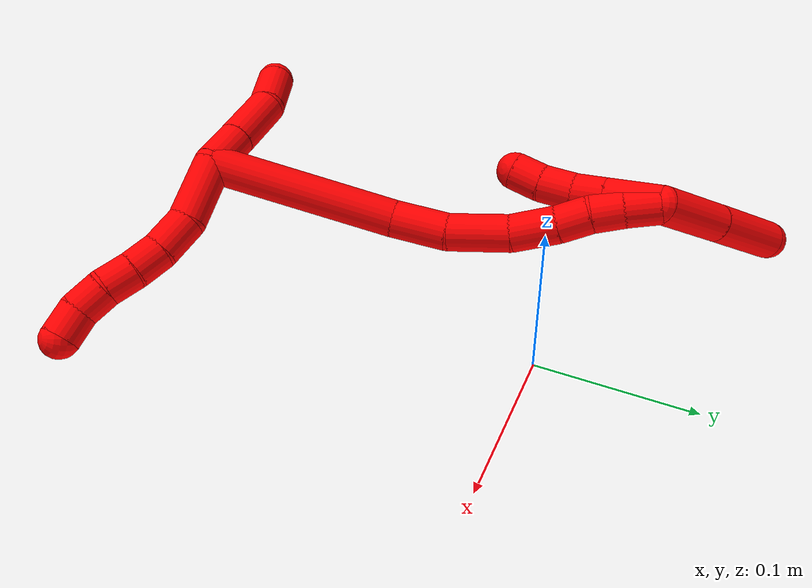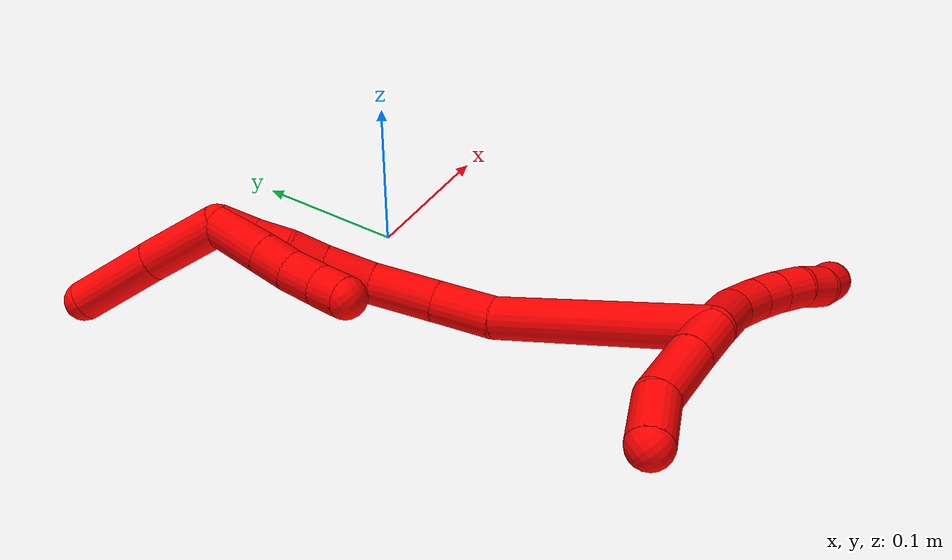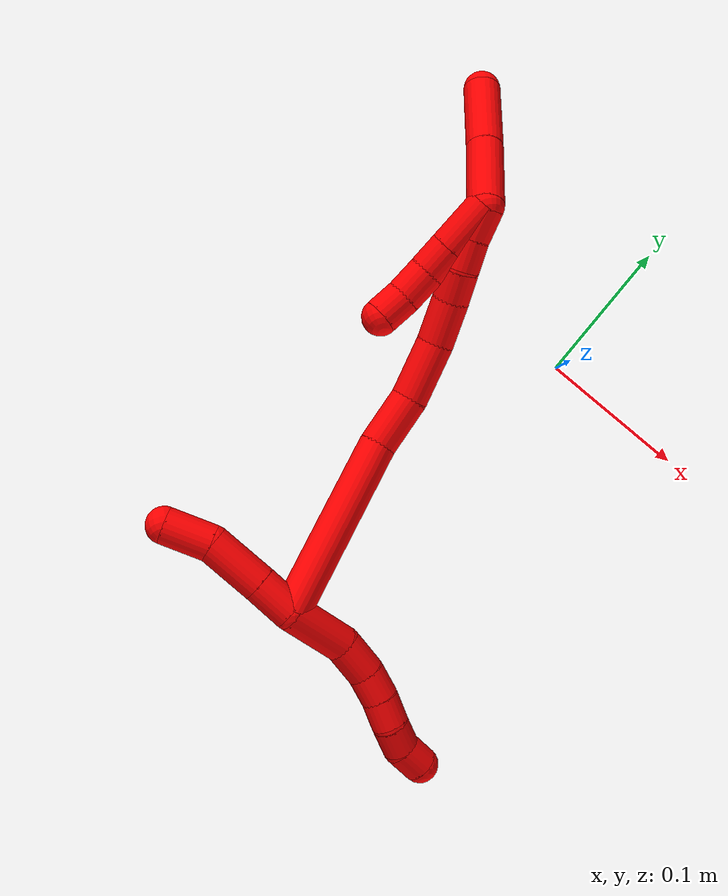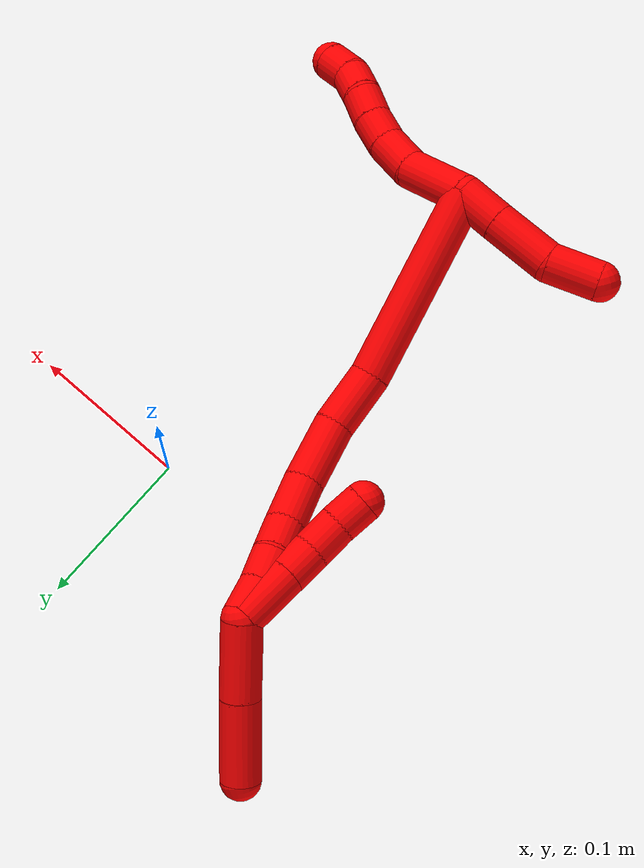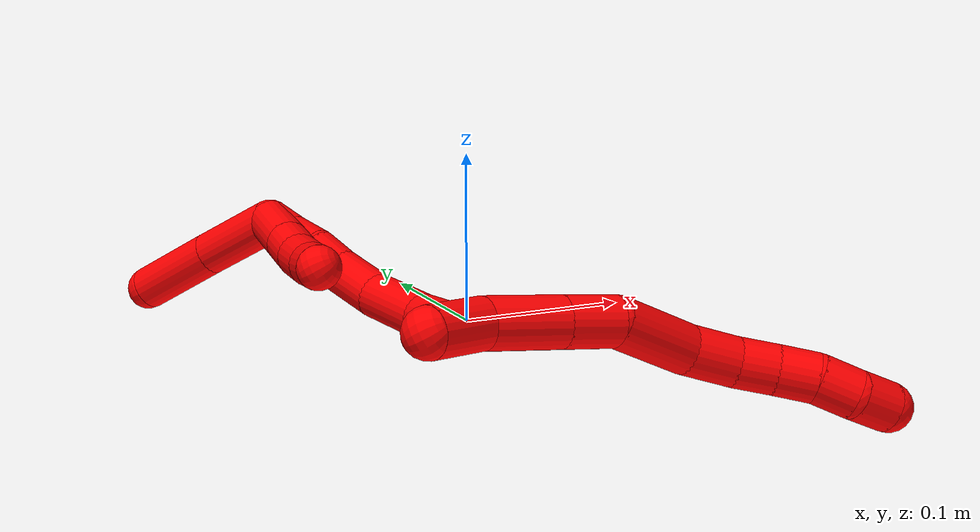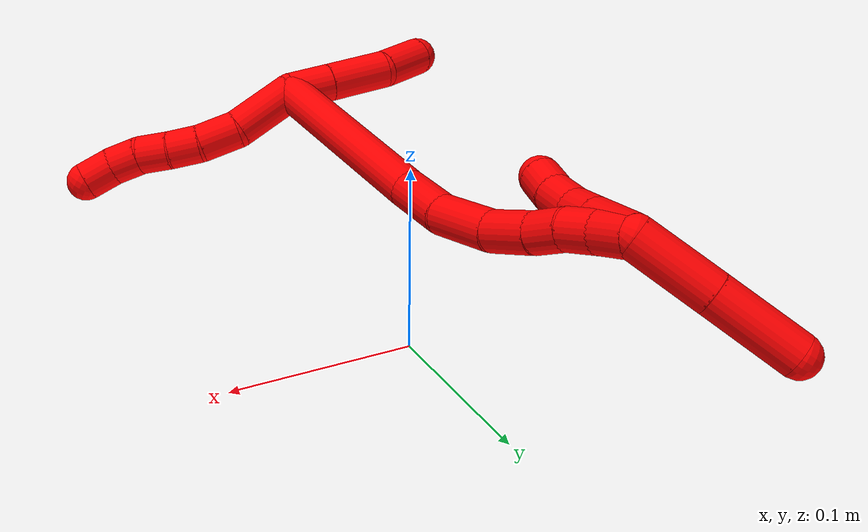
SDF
<sdf version="1.7">
 <world name="default">
  <model name="2">
   <static>0</static>
   <link name="2">
    <collision name="collision-cylinder-e_1_2_8">
     <pose>0.015666 0.012285 0.008926 -0.942449 0.801002 -0.424923</pose>
     <geometry><cylinder><radius>0.0125</radius><length>0.043635</length></cylinder></geometry>
     <surface>
      <friction><ode><mu>1.16</mu><mu2>1.16</mu2><slip1>0</slip1><slip2>0</slip2></ode></friction>
      <contact><ode><kp>1e+06</kp><kd>1</kd><max_vel>0</max_vel><min_depth>0.001</min_depth></ode></contact>
     </surface>
    </collision>
    <visual name="visual-cylinder-e_1_2_8">
     <pose>0.015666 0.012285 0.008926 -0.942449 0.801002 -0.424923</pose>
     <geometry><cylinder><radius>0.0125</radius><length>0.043635</length></cylinder></geometry>
     <material><ambient>1 0 0 1</ambient></material>
    </visual>
    <collision name="collision-cylinder-e_2_8_9">
     <pose>0.040262 0.029159 0.025952 -0.515534 0.764545 -0.211198</pose>
     <geometry><cylinder><radius>0.0125</radius><length>0.025801</length></cylinder></geometry>
     <surface>
      <friction><ode><mu>1.16</mu><mu2>1.16</mu2><slip1>0</slip1><slip2>0</slip2></ode></friction>
      <contact><ode><kp>1e+06</kp><kd>1</kd><max_vel>0</max_vel><min_depth>0.001</min_depth></ode></contact>
     </surface>
    </collision>
    <visual name="visual-cylinder-e_2_8_9">
     <pose>0.040262 0.029159 0.025952 -0.515534 0.764545 -0.211198</pose>
     <geometry><cylinder><radius>0.0125</radius><length>0.025801</length></cylinder></geometry>
     <material><ambient>1 0 0 1</ambient></material>
    </visual>
    <collision name="collision-cylinder-e_3_9_10">
     <pose>0.055711 0.035856 0.041525 -0.274807 0.698411 -0.100615</pose>
     <geometry><cylinder><radius>0.0125</radius><length>0.020278</length></cylinder></geometry>
     <surface>
      <friction><ode><mu>1.16</mu><mu2>1.16</mu2><slip1>0</slip1><slip2>0</slip2></ode></friction>
      <contact><ode><kp>1e+06</kp><kd>1</kd><max_vel>0</max_vel><min_depth>0.001</min_depth></ode></contact>
     </surface>
    </collision>
    <visual name="visual-cylinder-e_3_9_10">
     <pose>0.055711 0.035856 0.041525 -0.274807 0.698411 -0.100615</pose>
     <geometry><cylinder><radius>0.0125</radius><length>0.020278</length></cylinder></geometry>
     <material><ambient>1 0 0 1</ambient></material>
    </visual>
    <collision name="collision-cylinder-e_4_10_11">
     <pose>0.06865 0.038907 0.056621 -0.123187 0.696205 -0.044751</pose>
     <geometry><cylinder><radius>0.0125</radius><length>0.02002</length></cylinder></geometry>
     <surface>
      <friction><ode><mu>1.16</mu><mu2>1.16</mu2><slip1>0</slip1><slip2>0</slip2></ode></friction>
      <contact><ode><kp>1e+06</kp><kd>1</kd><max_vel>0</max_vel><min_depth>0.001</min_depth></ode></contact>
     </surface>
    </collision>
    <visual name="visual-cylinder-e_4_10_11">
     <pose>0.06865 0.038907 0.056621 -0.123187 0.696205 -0.044751</pose>
     <geometry><cylinder><radius>0.0125</radius><length>0.02002</length></cylinder></geometry>
     <material><ambient>1 0 0 1</ambient></material>
    </visual>
    <collision name="collision-cylinder-e_5_11_12">
     <pose>0.082927 0.04097 0.070369 -0.180724 0.900683 -0.087558</pose>
     <geometry><cylinder><radius>0.0125</radius><length>0.020051</length></cylinder></geometry>
     <surface>
      <friction><ode><mu>1.16</mu><mu2>1.16</mu2><slip1>0</slip1><slip2>0</slip2></ode></friction>
      <contact><ode><kp>1e+06</kp><kd>1</kd><max_vel>0</max_vel><min_depth>0.001</min_depth></ode></contact>
     </surface>
    </collision>
    <visual name="visual-cylinder-e_5_11_12">
     <pose>0.082927 0.04097 0.070369 -0.180724 0.900683 -0.087558</pose>
     <geometry><cylinder><radius>0.0125</radius><length>0.020051</length></cylinder></geometry>
     <material><ambient>1 0 0 1</ambient></material>
    </visual>
    <collision name="collision-cylinder-e_6_12_6">
     <pose>0.098298 0.046527 0.081594 -0.71612 0.838024 -0.330284</pose>
     <geometry><cylinder><radius>0.0125</radius><length>0.020215</length></cylinder></geometry>
     <surface>
      <friction><ode><mu>1.16</mu><mu2>1.16</mu2><slip1>0</slip1><slip2>0</slip2></ode></friction>
      <contact><ode><kp>1e+06</kp><kd>1</kd><max_vel>0</max_vel><min_depth>0.001</min_depth></ode></contact>
     </surface>
    </collision>
    <visual name="visual-cylinder-e_6_12_6">
     <pose>0.098298 0.046527 0.081594 -0.71612 0.838024 -0.330284</pose>
     <geometry><cylinder><radius>0.0125</radius><length>0.020215</length></cylinder></geometry>
     <material><ambient>1 0 0 1</ambient></material>
    </visual>
    <collision name="collision-cylinder-e_1_2_13">
     <pose>-0.006763 -0.007277 -0.009517 2.48879 -0.513961 -1.32027</pose>
     <geometry><cylinder><radius>0.0125</radius><length>0.027515</length></cylinder></geometry>
     <surface>
      <friction><ode><mu>1.16</mu><mu2>1.16</mu2><slip1>0</slip1><slip2>0</slip2></ode></friction>
      <contact><ode><kp>1e+06</kp><kd>1</kd><max_vel>0</max_vel><min_depth>0.001</min_depth></ode></contact>
     </surface>
    </collision>
    <visual name="visual-cylinder-e_1_2_13">
     <pose>-0.006763 -0.007277 -0.009517 2.48879 -0.513961 -1.32027</pose>
     <geometry><cylinder><radius>0.0125</radius><length>0.027515</length></cylinder></geometry>
     <material><ambient>1 0 0 1</ambient></material>
    </visual>
    <collision name="collision-cylinder-e_2_13_14">
     <pose>-0.023134 -0.025511 -0.032675 2.46489 -0.502114 -1.25964</pose>
     <geometry><cylinder><radius>0.0125</radius><length>0.039922</length></cylinder></geometry>
     <surface>
      <friction><ode><mu>1.16</mu><mu2>1.16</mu2><slip1>0</slip1><slip2>0</slip2></ode></friction>
      <contact><ode><kp>1e+06</kp><kd>1</kd><max_vel>0</max_vel><min_depth>0.001</min_depth></ode></contact>
     </surface>
    </collision>
    <visual name="visual-cylinder-e_2_13_14">
     <pose>-0.023134 -0.025511 -0.032675 2.46489 -0.502114 -1.25964</pose>
     <geometry><cylinder><radius>0.0125</radius><length>0.039922</length></cylinder></geometry>
     <material><ambient>1 0 0 1</ambient></material>
    </visual>
    <collision name="collision-cylinder-e_3_14_5">
     <pose>-0.03821 -0.049471 -0.054446 2.12959 -0.342565 -0.605159</pose>
     <geometry><cylinder><radius>0.0125</radius><length>0.032564</length></cylinder></geometry>
     <surface>
      <friction><ode><mu>1.16</mu><mu2>1.16</mu2><slip1>0</slip1><slip2>0</slip2></ode></friction>
      <contact><ode><kp>1e+06</kp><kd>1</kd><max_vel>0</max_vel><min_depth>0.001</min_depth></ode></contact>
     </surface>
    </collision>
    <visual name="visual-cylinder-e_3_14_5">
     <pose>-0.03821 -0.049471 -0.054446 2.12959 -0.342565 -0.605159</pose>
     <geometry><cylinder><radius>0.0125</radius><length>0.032564</length></cylinder></geometry>
     <material><ambient>1 0 0 1</ambient></material>
    </visual>
    <collision name="collision-cylinder-e_1_2_15">
     <pose>-0.00899 0.040751 -0.045933 -2.41591 -0.145378 0.379</pose>
     <geometry><cylinder><radius>0.0125</radius><length>0.124118</length></cylinder></geometry>
     <surface>
      <friction><ode><mu>1.16</mu><mu2>1.16</mu2><slip1>0</slip1><slip2>0</slip2></ode></friction>
      <contact><ode><kp>1e+06</kp><kd>1</kd><max_vel>0</max_vel><min_depth>0.001</min_depth></ode></contact>
     </surface>
    </collision>
    <visual name="visual-cylinder-e_1_2_15">
     <pose>-0.00899 0.040751 -0.045933 -2.41591 -0.145378 0.379</pose>
     <geometry><cylinder><radius>0.0125</radius><length>0.124118</length></cylinder></geometry>
     <material><ambient>1 0 0 1</ambient></material>
    </visual>
    <collision name="collision-cylinder-e_2_15_16">
     <pose>-0.022843 0.095797 -0.103006 -2.23272 -0.262133 0.527104</pose>
     <geometry><cylinder><radius>0.0125</radius><length>0.037528</length></cylinder></geometry>
     <surface>
      <friction><ode><mu>1.16</mu><mu2>1.16</mu2><slip1>0</slip1><slip2>0</slip2></ode></friction>
      <contact><ode><kp>1e+06</kp><kd>1</kd><max_vel>0</max_vel><min_depth>0.001</min_depth></ode></contact>
     </surface>
    </collision>
    <visual name="visual-cylinder-e_2_15_16">
     <pose>-0.022843 0.095797 -0.103006 -2.23272 -0.262133 0.527104</pose>
     <geometry><cylinder><radius>0.0125</radius><length>0.037528</length></cylinder></geometry>
     <material><ambient>1 0 0 1</ambient></material>
    </visual>
    <collision name="collision-cylinder-e_3_16_17">
     <pose>-0.036932 0.12337 -0.126765 -2.33086 -0.466569 1.01135</pose>
     <geometry><cylinder><radius>0.0125</radius><length>0.041022</length></cylinder></geometry>
     <surface>
      <friction><ode><mu>1.16</mu><mu2>1.16</mu2><slip1>0</slip1><slip2>0</slip2></ode></friction>
      <contact><ode><kp>1e+06</kp><kd>1</kd><max_vel>0</max_vel><min_depth>0.001</min_depth></ode></contact>
     </surface>
    </collision>
    <visual name="visual-cylinder-e_3_16_17">
     <pose>-0.036932 0.12337 -0.126765 -2.33086 -0.466569 1.01135</pose>
     <geometry><cylinder><radius>0.0125</radius><length>0.041022</length></cylinder></geometry>
     <material><ambient>1 0 0 1</ambient></material>
    </visual>
    <collision name="collision-cylinder-e_4_17_18">
     <pose>-0.055902 0.1453 -0.147853 -2.34531 -0.677713 1.39493</pose>
     <geometry><cylinder><radius>0.0125</radius><length>0.031079</length></cylinder></geometry>
     <surface>
      <friction><ode><mu>1.16</mu><mu2>1.16</mu2><slip1>0</slip1><slip2>0</slip2></ode></friction>
      <contact><ode><kp>1e+06</kp><kd>1</kd><max_vel>0</max_vel><min_depth>0.001</min_depth></ode></contact>
     </surface>
    </collision>
    <visual name="visual-cylinder-e_4_17_18">
     <pose>-0.055902 0.1453 -0.147853 -2.34531 -0.677713 1.39493</pose>
     <geometry><cylinder><radius>0.0125</radius><length>0.031079</length></cylinder></geometry>
     <material><ambient>1 0 0 1</ambient></material>
    </visual>
    <collision name="collision-cylinder-e_5_18_19">
     <pose>-0.073462 0.159443 -0.161494 -2.32658 -0.803085 1.55431</pose>
     <geometry><cylinder><radius>0.0125</radius><length>0.021729</length></cylinder></geometry>
     <surface>
      <friction><ode><mu>1.16</mu><mu2>1.16</mu2><slip1>0</slip1><slip2>0</slip2></ode></friction>
      <contact><ode><kp>1e+06</kp><kd>1</kd><max_vel>0</max_vel><min_depth>0.001</min_depth></ode></contact>
     </surface>
    </collision>
    <visual name="visual-cylinder-e_5_18_19">
     <pose>-0.073462 0.159443 -0.161494 -2.32658 -0.803085 1.55431</pose>
     <geometry><cylinder><radius>0.0125</radius><length>0.021729</length></cylinder></geometry>
     <material><ambient>1 0 0 1</ambient></material>
    </visual>
    <collision name="collision-cylinder-e_6_19_20">
     <pose>-0.087635 0.170754 -0.172974 -2.39617 -0.637503 1.40203</pose>
     <geometry><cylinder><radius>0.0125</radius><length>0.021357</length></cylinder></geometry>
     <surface>
      <friction><ode><mu>1.16</mu><mu2>1.16</mu2><slip1>0</slip1><slip2>0</slip2></ode></friction>
      <contact><ode><kp>1e+06</kp><kd>1</kd><max_vel>0</max_vel><min_depth>0.001</min_depth></ode></contact>
     </surface>
    </collision>
    <visual name="visual-cylinder-e_6_19_20">
     <pose>-0.087635 0.170754 -0.172974 -2.39617 -0.637503 1.40203</pose>
     <geometry><cylinder><radius>0.0125</radius><length>0.021357</length></cylinder></geometry>
     <material><ambient>1 0 0 1</ambient></material>
    </visual>
    <collision name="collision-cylinder-e_7_20_1">
     <pose>-0.100587 0.183854 -0.185418 -2.27141 -0.605884 1.18402</pose>
     <geometry><cylinder><radius>0.0125</radius><length>0.023167</length></cylinder></geometry>
     <surface>
      <friction><ode><mu>1.16</mu><mu2>1.16</mu2><slip1>0</slip1><slip2>0</slip2></ode></friction>
      <contact><ode><kp>1e+06</kp><kd>1</kd><max_vel>0</max_vel><min_depth>0.001</min_depth></ode></contact>
     </surface>
    </collision>
    <visual name="visual-cylinder-e_7_20_1">
     <pose>-0.100587 0.183854 -0.185418 -2.27141 -0.605884 1.18402</pose>
     <geometry><cylinder><radius>0.0125</radius><length>0.023167</length></cylinder></geometry>
     <material><ambient>1 0 0 1</ambient></material>
    </visual>
    <collision name="collision-cylinder-e_1_1_21">
     <pose>-0.100106 0.175896 -0.184572 1.14095 0.399554 0.258387</pose>
     <geometry><cylinder><radius>0.0125</radius><length>0.036389</length></cylinder></geometry>
     <surface>
      <friction><ode><mu>1.16</mu><mu2>1.16</mu2><slip1>0</slip1><slip2>0</slip2></ode></friction>
      <contact><ode><kp>1e+06</kp><kd>1</kd><max_vel>0</max_vel><min_depth>0.001</min_depth></ode></contact>
     </surface>
    </collision>
    <visual name="visual-cylinder-e_1_1_21">
     <pose>-0.100106 0.175896 -0.184572 1.14095 0.399554 0.258387</pose>
     <geometry><cylinder><radius>0.0125</radius><length>0.036389</length></cylinder></geometry>
     <material><ambient>1 0 0 1</ambient></material>
    </visual>
    <collision name="collision-cylinder-e_2_21_22">
     <pose>-0.08898 0.151848 -0.173521 1.13854 0.395265 0.254901</pose>
     <geometry><cylinder><radius>0.0125</radius><length>0.02103</length></cylinder></geometry>
     <surface>
      <friction><ode><mu>1.16</mu><mu2>1.16</mu2><slip1>0</slip1><slip2>0</slip2></ode></friction>
      <contact><ode><kp>1e+06</kp><kd>1</kd><max_vel>0</max_vel><min_depth>0.001</min_depth></ode></contact>
     </surface>
    </collision>
    <visual name="visual-cylinder-e_2_21_22">
     <pose>-0.08898 0.151848 -0.173521 1.13854 0.395265 0.254901</pose>
     <geometry><cylinder><radius>0.0125</radius><length>0.02103</length></cylinder></geometry>
     <material><ambient>1 0 0 1</ambient></material>
    </visual>
    <collision name="collision-cylinder-e_3_22_23">
     <pose>-0.081947 0.13348 -0.164337 1.07904 0.268601 0.161454</pose>
     <geometry><cylinder><radius>0.0125</radius><length>0.022488</length></cylinder></geometry>
     <surface>
      <friction><ode><mu>1.16</mu><mu2>1.16</mu2><slip1>0</slip1><slip2>0</slip2></ode></friction>
      <contact><ode><kp>1e+06</kp><kd>1</kd><max_vel>0</max_vel><min_depth>0.001</min_depth></ode></contact>
     </surface>
    </collision>
    <visual name="visual-cylinder-e_3_22_23">
     <pose>-0.081947 0.13348 -0.164337 1.07904 0.268601 0.161454</pose>
     <geometry><cylinder><radius>0.0125</radius><length>0.022488</length></cylinder></geometry>
     <material><ambient>1 0 0 1</ambient></material>
    </visual>
    <collision name="collision-cylinder-e_4_23_4">
     <pose>-0.077934 0.115004 -0.154712 1.10301 0.102616 0.063162</pose>
     <geometry><cylinder><radius>0.0125</radius><length>0.020093</length></cylinder></geometry>
     <surface>
      <friction><ode><mu>1.16</mu><mu2>1.16</mu2><slip1>0</slip1><slip2>0</slip2></ode></friction>
      <contact><ode><kp>1e+06</kp><kd>1</kd><max_vel>0</max_vel><min_depth>0.001</min_depth></ode></contact>
     </surface>
    </collision>
    <visual name="visual-cylinder-e_4_23_4">
     <pose>-0.077934 0.115004 -0.154712 1.10301 0.102616 0.063162</pose>
     <geometry><cylinder><radius>0.0125</radius><length>0.020093</length></cylinder></geometry>
     <material><ambient>1 0 0 1</ambient></material>
    </visual>
    <collision name="collision-cylinder-e_1_1_24">
     <pose>-0.10679 0.197016 -0.215016 -2.89586 0.016299 -0.131802</pose>
     <geometry><cylinder><radius>0.0125</radius><length>0.048378</length></cylinder></geometry>
     <surface>
      <friction><ode><mu>1.16</mu><mu2>1.16</mu2><slip1>0</slip1><slip2>0</slip2></ode></friction>
      <contact><ode><kp>1e+06</kp><kd>1</kd><max_vel>0</max_vel><min_depth>0.001</min_depth></ode></contact>
     </surface>
    </collision>
    <visual name="visual-cylinder-e_1_1_24">
     <pose>-0.10679 0.197016 -0.215016 -2.89586 0.016299 -0.131802</pose>
     <geometry><cylinder><radius>0.0125</radius><length>0.048378</length></cylinder></geometry>
     <material><ambient>1 0 0 1</ambient></material>
    </visual>
    <collision name="collision-cylinder-e_2_24_3">
     <pose>-0.10567 0.208553 -0.263649 -2.92071 0.028123 -0.252273</pose>
     <geometry><cylinder><radius>0.0125</radius><length>0.051622</length></cylinder></geometry>
     <surface>
      <friction><ode><mu>1.16</mu><mu2>1.16</mu2><slip1>0</slip1><slip2>0</slip2></ode></friction>
      <contact><ode><kp>1e+06</kp><kd>1</kd><max_vel>0</max_vel><min_depth>0.001</min_depth></ode></contact>
     </surface>
    </collision>
    <visual name="visual-cylinder-e_2_24_3">
     <pose>-0.10567 0.208553 -0.263649 -2.92071 0.028123 -0.252273</pose>
     <geometry><cylinder><radius>0.0125</radius><length>0.051622</length></cylinder></geometry>
     <material><ambient>1 0 0 1</ambient></material>
    </visual>
    <collision name="collision-sphere-3">
     <pose>-0.104944 0.214205 -0.288823 0 -0 0</pose>
     <geometry><sphere><radius>0.0125</radius></sphere></geometry>
     <surface>
      <friction><ode><mu>1.16</mu><mu2>1.16</mu2><slip1>0</slip1><slip2>0</slip2></ode></friction>
      <contact><ode><kp>1e+06</kp><kd>1</kd><max_vel>0</max_vel><min_depth>0.001</min_depth></ode></contact>
     </surface>
    </collision>
    <visual name="visual-sphere-3">
     <pose>-0.104944 0.214205 -0.288823 0 -0 0</pose>
     <geometry><sphere><radius>0.0125</radius></sphere></geometry>
     <material><ambient>1 0 0 1</ambient></material>
    </visual>
    <collision name="collision-sphere-24">
     <pose>-0.106396 0.2029 -0.238475 0 -0 0</pose>
     <geometry><sphere><radius>0.0125</radius></sphere></geometry>
     <surface>
      <friction><ode><mu>1.16</mu><mu2>1.16</mu2><slip1>0</slip1><slip2>0</slip2></ode></friction>
      <contact><ode><kp>1e+06</kp><kd>1</kd><max_vel>0</max_vel><min_depth>0.001</min_depth></ode></contact>
     </surface>
    </collision>
    <visual name="visual-sphere-24">
     <pose>-0.106396 0.2029 -0.238475 0 -0 0</pose>
     <geometry><sphere><radius>0.0125</radius></sphere></geometry>
     <material><ambient>1 0 0 1</ambient></material>
    </visual>
    <collision name="collision-sphere-4">
     <pose>-0.076905 0.106084 -0.150206 0 -0 0</pose>
     <geometry><sphere><radius>0.0125</radius></sphere></geometry>
     <surface>
      <friction><ode><mu>1.16</mu><mu2>1.16</mu2><slip1>0</slip1><slip2>0</slip2></ode></friction>
      <contact><ode><kp>1e+06</kp><kd>1</kd><max_vel>0</max_vel><min_depth>0.001</min_depth></ode></contact>
     </surface>
    </collision>
    <visual name="visual-sphere-4">
     <pose>-0.076905 0.106084 -0.150206 0 -0 0</pose>
     <geometry><sphere><radius>0.0125</radius></sphere></geometry>
     <material><ambient>1 0 0 1</ambient></material>
    </visual>
    <collision name="collision-sphere-23">
     <pose>-0.078963 0.123924 -0.159218 0 -0 0</pose>
     <geometry><sphere><radius>0.0125</radius></sphere></geometry>
     <surface>
      <friction><ode><mu>1.16</mu><mu2>1.16</mu2><slip1>0</slip1><slip2>0</slip2></ode></friction>
      <contact><ode><kp>1e+06</kp><kd>1</kd><max_vel>0</max_vel><min_depth>0.001</min_depth></ode></contact>
     </surface>
    </collision>
    <visual name="visual-sphere-23">
     <pose>-0.078963 0.123924 -0.159218 0 -0 0</pose>
     <geometry><sphere><radius>0.0125</radius></sphere></geometry>
     <material><ambient>1 0 0 1</ambient></material>
    </visual>
    <collision name="collision-sphere-22">
     <pose>-0.084931 0.143036 -0.169456 0 -0 0</pose>
     <geometry><sphere><radius>0.0125</radius></sphere></geometry>
     <surface>
      <friction><ode><mu>1.16</mu><mu2>1.16</mu2><slip1>0</slip1><slip2>0</slip2></ode></friction>
      <contact><ode><kp>1e+06</kp><kd>1</kd><max_vel>0</max_vel><min_depth>0.001</min_depth></ode></contact>
     </surface>
    </collision>
    <visual name="visual-sphere-22">
     <pose>-0.084931 0.143036 -0.169456 0 -0 0</pose>
     <geometry><sphere><radius>0.0125</radius></sphere></geometry>
     <material><ambient>1 0 0 1</ambient></material>
    </visual>
    <collision name="collision-sphere-21">
     <pose>-0.093029 0.16066 -0.177587 0 -0 0</pose>
     <geometry><sphere><radius>0.0125</radius></sphere></geometry>
     <surface>
      <friction><ode><mu>1.16</mu><mu2>1.16</mu2><slip1>0</slip1><slip2>0</slip2></ode></friction>
      <contact><ode><kp>1e+06</kp><kd>1</kd><max_vel>0</max_vel><min_depth>0.001</min_depth></ode></contact>
     </surface>
    </collision>
    <visual name="visual-sphere-21">
     <pose>-0.093029 0.16066 -0.177587 0 -0 0</pose>
     <geometry><sphere><radius>0.0125</radius></sphere></geometry>
     <material><ambient>1 0 0 1</ambient></material>
    </visual>
    <collision name="collision-sphere-1">
     <pose>-0.107184 0.191133 -0.191557 0 -0 0</pose>
     <geometry><sphere><radius>0.0125</radius></sphere></geometry>
     <surface>
      <friction><ode><mu>1.16</mu><mu2>1.16</mu2><slip1>0</slip1><slip2>0</slip2></ode></friction>
      <contact><ode><kp>1e+06</kp><kd>1</kd><max_vel>0</max_vel><min_depth>0.001</min_depth></ode></contact>
     </surface>
    </collision>
    <visual name="visual-sphere-1">
     <pose>-0.107184 0.191133 -0.191557 0 -0 0</pose>
     <geometry><sphere><radius>0.0125</radius></sphere></geometry>
     <material><ambient>1 0 0 1</ambient></material>
    </visual>
    <collision name="collision-sphere-12">
     <pose>0.090784 0.042089 0.076494 0 -0 0</pose>
     <geometry><sphere><radius>0.0125</radius></sphere></geometry>
     <surface>
      <friction><ode><mu>1.16</mu><mu2>1.16</mu2><slip1>0</slip1><slip2>0</slip2></ode></friction>
      <contact><ode><kp>1e+06</kp><kd>1</kd><max_vel>0</max_vel><min_depth>0.001</min_depth></ode></contact>
     </surface>
    </collision>
    <visual name="visual-sphere-12">
     <pose>0.090784 0.042089 0.076494 0 -0 0</pose>
     <geometry><sphere><radius>0.0125</radius></sphere></geometry>
     <material><ambient>1 0 0 1</ambient></material>
    </visual>
    <collision name="collision-sphere-11">
     <pose>0.07507 0.039851 0.064244 0 -0 0</pose>
     <geometry><sphere><radius>0.0125</radius></sphere></geometry>
     <surface>
      <friction><ode><mu>1.16</mu><mu2>1.16</mu2><slip1>0</slip1><slip2>0</slip2></ode></friction>
      <contact><ode><kp>1e+06</kp><kd>1</kd><max_vel>0</max_vel><min_depth>0.001</min_depth></ode></contact>
     </surface>
    </collision>
    <visual name="visual-sphere-11">
     <pose>0.07507 0.039851 0.064244 0 -0 0</pose>
     <geometry><sphere><radius>0.0125</radius></sphere></geometry>
     <material><ambient>1 0 0 1</ambient></material>
    </visual>
    <collision name="collision-sphere-10">
     <pose>0.06223 0.037963 0.048999 0 -0 0</pose>
     <geometry><sphere><radius>0.0125</radius></sphere></geometry>
     <surface>
      <friction><ode><mu>1.16</mu><mu2>1.16</mu2><slip1>0</slip1><slip2>0</slip2></ode></friction>
      <contact><ode><kp>1e+06</kp><kd>1</kd><max_vel>0</max_vel><min_depth>0.001</min_depth></ode></contact>
     </surface>
    </collision>
    <visual name="visual-sphere-10">
     <pose>0.06223 0.037963 0.048999 0 -0 0</pose>
     <geometry><sphere><radius>0.0125</radius></sphere></geometry>
     <material><ambient>1 0 0 1</ambient></material>
    </visual>
    <collision name="collision-sphere-9">
     <pose>0.049192 0.033749 0.034052 0 -0 0</pose>
     <geometry><sphere><radius>0.0125</radius></sphere></geometry>
     <surface>
      <friction><ode><mu>1.16</mu><mu2>1.16</mu2><slip1>0</slip1><slip2>0</slip2></ode></friction>
      <contact><ode><kp>1e+06</kp><kd>1</kd><max_vel>0</max_vel><min_depth>0.001</min_depth></ode></contact>
     </surface>
    </collision>
    <visual name="visual-sphere-9">
     <pose>0.049192 0.033749 0.034052 0 -0 0</pose>
     <geometry><sphere><radius>0.0125</radius></sphere></geometry>
     <material><ambient>1 0 0 1</ambient></material>
    </visual>
    <collision name="collision-sphere-2">
     <geometry><sphere><radius>0.0125</radius></sphere></geometry>
     <surface>
      <friction><ode><mu>1.16</mu><mu2>1.16</mu2><slip1>0</slip1><slip2>0</slip2></ode></friction>
      <contact><ode><kp>1e+06</kp><kd>1</kd><max_vel>0</max_vel><min_depth>0.001</min_depth></ode></contact>
     </surface>
    </collision>
    <visual name="visual-sphere-2">
     <geometry><sphere><radius>0.0125</radius></sphere></geometry>
     <material><ambient>1 0 0 1</ambient></material>
    </visual>
    <collision name="collision-sphere-19">
     <pose>-0.081279 0.164934 -0.166669 0 -0 0</pose>
     <geometry><sphere><radius>0.0125</radius></sphere></geometry>
     <surface>
      <friction><ode><mu>1.16</mu><mu2>1.16</mu2><slip1>0</slip1><slip2>0</slip2></ode></friction>
      <contact><ode><kp>1e+06</kp><kd>1</kd><max_vel>0</max_vel><min_depth>0.001</min_depth></ode></contact>
     </surface>
    </collision>
    <visual name="visual-sphere-19">
     <pose>-0.081279 0.164934 -0.166669 0 -0 0</pose>
     <geometry><sphere><radius>0.0125</radius></sphere></geometry>
     <material><ambient>1 0 0 1</ambient></material>
    </visual>
    <collision name="collision-sphere-8">
     <pose>0.031333 0.024569 0.017852 0 -0 0</pose>
     <geometry><sphere><radius>0.0125</radius></sphere></geometry>
     <surface>
      <friction><ode><mu>1.16</mu><mu2>1.16</mu2><slip1>0</slip1><slip2>0</slip2></ode></friction>
      <contact><ode><kp>1e+06</kp><kd>1</kd><max_vel>0</max_vel><min_depth>0.001</min_depth></ode></contact>
     </surface>
    </collision>
    <visual name="visual-sphere-8">
     <pose>0.031333 0.024569 0.017852 0 -0 0</pose>
     <geometry><sphere><radius>0.0125</radius></sphere></geometry>
     <material><ambient>1 0 0 1</ambient></material>
    </visual>
    <collision name="collision-sphere-6">
     <pose>0.105811 0.050966 0.086695 0 -0 0</pose>
     <geometry><sphere><radius>0.0125</radius></sphere></geometry>
     <surface>
      <friction><ode><mu>1.16</mu><mu2>1.16</mu2><slip1>0</slip1><slip2>0</slip2></ode></friction>
      <contact><ode><kp>1e+06</kp><kd>1</kd><max_vel>0</max_vel><min_depth>0.001</min_depth></ode></contact>
     </surface>
    </collision>
    <visual name="visual-sphere-6">
     <pose>0.105811 0.050966 0.086695 0 -0 0</pose>
     <geometry><sphere><radius>0.0125</radius></sphere></geometry>
     <material><ambient>1 0 0 1</ambient></material>
    </visual>
    <collision name="collision-sphere-13">
     <pose>-0.013527 -0.014553 -0.019033 0 -0 0</pose>
     <geometry><sphere><radius>0.0125</radius></sphere></geometry>
     <surface>
      <friction><ode><mu>1.16</mu><mu2>1.16</mu2><slip1>0</slip1><slip2>0</slip2></ode></friction>
      <contact><ode><kp>1e+06</kp><kd>1</kd><max_vel>0</max_vel><min_depth>0.001</min_depth></ode></contact>
     </surface>
    </collision>
    <visual name="visual-sphere-13">
     <pose>-0.013527 -0.014553 -0.019033 0 -0 0</pose>
     <geometry><sphere><radius>0.0125</radius></sphere></geometry>
     <material><ambient>1 0 0 1</ambient></material>
    </visual>
    <collision name="collision-sphere-14">
     <pose>-0.03274 -0.036468 -0.046316 0 -0 0</pose>
     <geometry><sphere><radius>0.0125</radius></sphere></geometry>
     <surface>
      <friction><ode><mu>1.16</mu><mu2>1.16</mu2><slip1>0</slip1><slip2>0</slip2></ode></friction>
      <contact><ode><kp>1e+06</kp><kd>1</kd><max_vel>0</max_vel><min_depth>0.001</min_depth></ode></contact>
     </surface>
    </collision>
    <visual name="visual-sphere-14">
     <pose>-0.03274 -0.036468 -0.046316 0 -0 0</pose>
     <geometry><sphere><radius>0.0125</radius></sphere></geometry>
     <material><ambient>1 0 0 1</ambient></material>
    </visual>
    <collision name="collision-sphere-5">
     <pose>-0.043679 -0.062474 -0.062577 0 -0 0</pose>
     <geometry><sphere><radius>0.0125</radius></sphere></geometry>
     <surface>
      <friction><ode><mu>1.16</mu><mu2>1.16</mu2><slip1>0</slip1><slip2>0</slip2></ode></friction>
      <contact><ode><kp>1e+06</kp><kd>1</kd><max_vel>0</max_vel><min_depth>0.001</min_depth></ode></contact>
     </surface>
    </collision>
    <visual name="visual-sphere-5">
     <pose>-0.043679 -0.062474 -0.062577 0 -0 0</pose>
     <geometry><sphere><radius>0.0125</radius></sphere></geometry>
     <material><ambient>1 0 0 1</ambient></material>
    </visual>
    <collision name="collision-sphere-15">
     <pose>-0.017981 0.081501 -0.091867 0 -0 0</pose>
     <geometry><sphere><radius>0.0125</radius></sphere></geometry>
     <surface>
      <friction><ode><mu>1.16</mu><mu2>1.16</mu2><slip1>0</slip1><slip2>0</slip2></ode></friction>
      <contact><ode><kp>1e+06</kp><kd>1</kd><max_vel>0</max_vel><min_depth>0.001</min_depth></ode></contact>
     </surface>
    </collision>
    <visual name="visual-sphere-15">
     <pose>-0.017981 0.081501 -0.091867 0 -0 0</pose>
     <geometry><sphere><radius>0.0125</radius></sphere></geometry>
     <material><ambient>1 0 0 1</ambient></material>
    </visual>
    <collision name="collision-sphere-16">
     <pose>-0.027706 0.110093 -0.114145 0 -0 0</pose>
     <geometry><sphere><radius>0.0125</radius></sphere></geometry>
     <surface>
      <friction><ode><mu>1.16</mu><mu2>1.16</mu2><slip1>0</slip1><slip2>0</slip2></ode></friction>
      <contact><ode><kp>1e+06</kp><kd>1</kd><max_vel>0</max_vel><min_depth>0.001</min_depth></ode></contact>
     </surface>
    </collision>
    <visual name="visual-sphere-16">
     <pose>-0.027706 0.110093 -0.114145 0 -0 0</pose>
     <geometry><sphere><radius>0.0125</radius></sphere></geometry>
     <material><ambient>1 0 0 1</ambient></material>
    </visual>
    <collision name="collision-sphere-17">
     <pose>-0.046158 0.136647 -0.139386 0 -0 0</pose>
     <geometry><sphere><radius>0.0125</radius></sphere></geometry>
     <surface>
      <friction><ode><mu>1.16</mu><mu2>1.16</mu2><slip1>0</slip1><slip2>0</slip2></ode></friction>
      <contact><ode><kp>1e+06</kp><kd>1</kd><max_vel>0</max_vel><min_depth>0.001</min_depth></ode></contact>
     </surface>
    </collision>
    <visual name="visual-sphere-17">
     <pose>-0.046158 0.136647 -0.139386 0 -0 0</pose>
     <geometry><sphere><radius>0.0125</radius></sphere></geometry>
     <material><ambient>1 0 0 1</ambient></material>
    </visual>
    <collision name="collision-sphere-18">
     <pose>-0.065645 0.153952 -0.156319 0 -0 0</pose>
     <geometry><sphere><radius>0.0125</radius></sphere></geometry>
     <surface>
      <friction><ode><mu>1.16</mu><mu2>1.16</mu2><slip1>0</slip1><slip2>0</slip2></ode></friction>
      <contact><ode><kp>1e+06</kp><kd>1</kd><max_vel>0</max_vel><min_depth>0.001</min_depth></ode></contact>
     </surface>
    </collision>
    <visual name="visual-sphere-18">
     <pose>-0.065645 0.153952 -0.156319 0 -0 0</pose>
     <geometry><sphere><radius>0.0125</radius></sphere></geometry>
     <material><ambient>1 0 0 1</ambient></material>
    </visual>
    <collision name="collision-sphere-20">
     <pose>-0.093991 0.176575 -0.179279 0 -0 0</pose>
     <geometry><sphere><radius>0.0125</radius></sphere></geometry>
     <surface>
      <friction><ode><mu>1.16</mu><mu2>1.16</mu2><slip1>0</slip1><slip2>0</slip2></ode></friction>
      <contact><ode><kp>1e+06</kp><kd>1</kd><max_vel>0</max_vel><min_depth>0.001</min_depth></ode></contact>
     </surface>
    </collision>
    <visual name="visual-sphere-20">
     <pose>-0.093991 0.176575 -0.179279 0 -0 0</pose>
     <geometry><sphere><radius>0.0125</radius></sphere></geometry>
     <material><ambient>1 0 0 1</ambient></material>
    </visual>
    <inertial>
     <pose>-0.033394 0.088708 -0.092383 0 -0 0</pose>
     <mass>0.75</mass>
     <inertia>
      <ixx>0.000269</ixx>
      <ixy>0</ixy>
      <ixz>0</ixz>
      <iyy>-4.5e-05</iyy>
      <iyz>0</iyz>
      <izz>-0.000111</izz>
     </inertia>
    </inertial>
   </link>
   <pose>-0.033287 -0.235936 0.062114 -0.016521 1.0623 -0.622039</pose>
  </model>
 </world>
</sdf>
